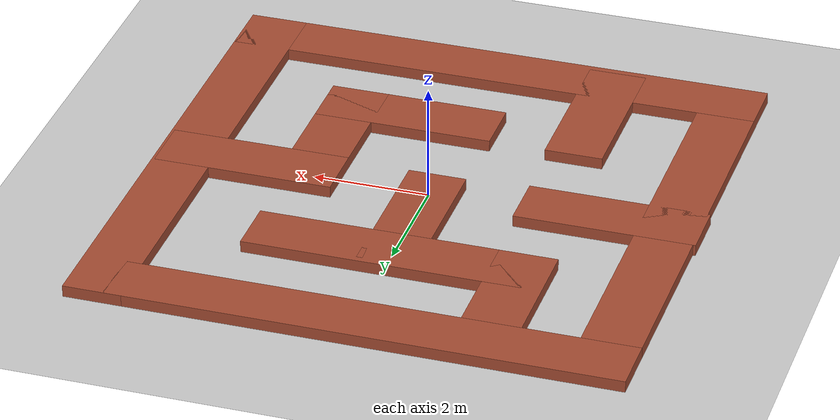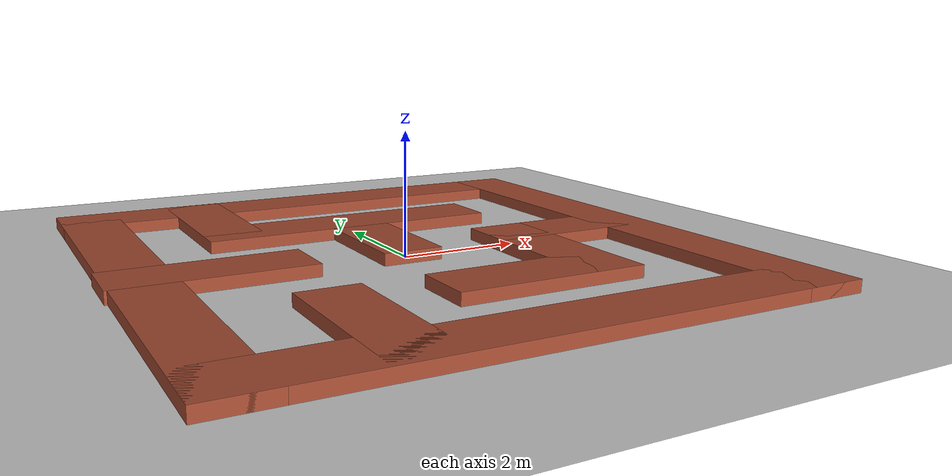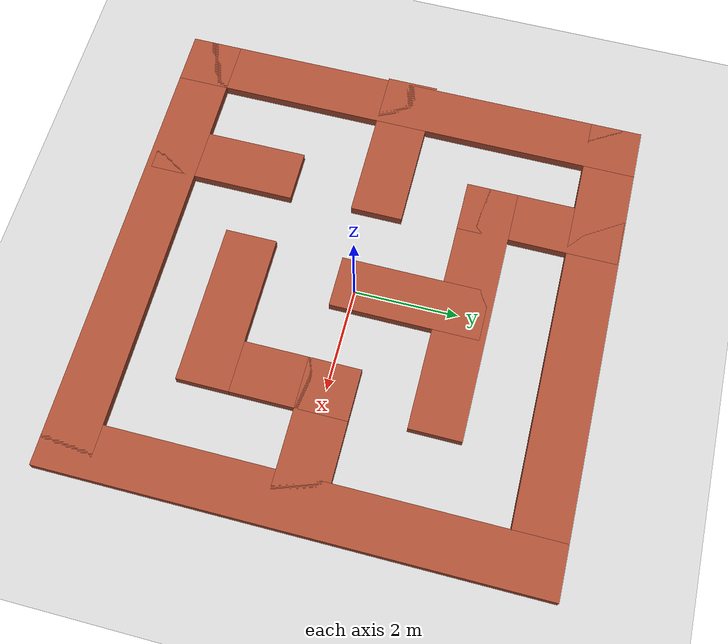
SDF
<sdf version="1.7">
 <world name="default">
  <light name="sun" type="directional">
   <pose>0 0 10 0 -0 0</pose>
   <diffuse>0.8 0.8 0.8 1</diffuse>
   <specular>0.2 0.2 0.2 1</specular>
   <attenuation>
    <range>1000</range>
    <constant>0.9</constant>
    <linear>0.01</linear>
    <quadratic>0.001</quadratic>
   </attenuation>
   <direction>-0.5 0.1 -0.9</direction>
   <spot><inner_angle>0</inner_angle><outer_angle>0</outer_angle><falloff>0</falloff></spot>
  </light>
  <model name="ground_plane">
   <static>1</static>
   <link name="link">
    <collision name="collision">
     <geometry><plane><normal>0 0 1</normal><size>100 100</size></plane></geometry>
     <surface><friction><ode><mu>100</mu><mu2>50</mu2></ode></friction></surface>
    </collision>
    <visual name="visual">
     <cast_shadows>0</cast_shadows>
     <geometry><plane><normal>0 0 1</normal><size>100 100</size></plane></geometry>
     <material>
      <script><uri>file://media/materials/scripts/gazebo.material</uri><name>Gazebo/Grey</name></script>
     </material>
    </visual>
   </link>
  </model>
  <gravity>0 0 -9.8</gravity>
  <magnetic_field>6e-06 2.3e-05 -4.2e-05</magnetic_field>
  <atmosphere type="adiabatic"/>
  <physics type="ode">
   <max_step_size>0.001</max_step_size>
   <real_time_factor>1</real_time_factor>
   <real_time_update_rate>1000</real_time_update_rate>
  </physics>
  <scene><ambient>0.4 0.4 0.4 1</ambient><background>0.7 0.7 0.7 1</background><shadows>1</shadows></scene>
  <audio><device>default</device></audio>
  <spherical_coordinates>
   <surface_model>EARTH_WGS84</surface_model>
   <latitude_deg>0</latitude_deg>
   <longitude_deg>0</longitude_deg>
   <elevation>0</elevation>
   <heading_deg>0</heading_deg>
  </spherical_coordinates>
  <model name="little_maze">
   <pose>-0.015424 0.038 0 0 -0 0</pose>
   <link name="Wall_0">
    <collision name="Wall_0_Collision">
     <geometry><box><size>9.35 1 0.2</size></box></geometry>
     <pose>0 0 0.1 0 -0 0</pose>
    </collision>
    <visual name="Wall_0_Visual">
     <pose>0 0 0.1 0 -0 0</pose>
     <geometry><box><size>9.35 1 0.2</size></box></geometry>
     <material>
      <script><uri>file://media/materials/scripts/gazebo.material</uri><name>Gazebo/Bricks</name></script>
      <ambient>1 1 1 1</ambient>
     </material>
     <meta><layer>0</layer></meta>
    </visual>
    <pose>0.022424 -4.175 0 0 -0 0</pose>
   </link>
   <link name="Wall_10">
    <collision name="Wall_10_Collision">
     <geometry><box><size>3.0997 1 0.2</size></box></geometry>
     <pose>0 0 0.1 0 -0 0</pose>
    </collision>
    <visual name="Wall_10_Visual">
     <pose>0 0 0.1 0 -0 0</pose>
     <geometry><box><size>3.0997 1 0.2</size></box></geometry>
     <material>
      <script><uri>file://media/materials/scripts/gazebo.material</uri><name>Gazebo/Bricks</name></script>
      <ambient>1 1 1 1</ambient>
     </material>
     <meta><layer>0</layer></meta>
    </visual>
    <pose>-3.14758 -0.02 0 0 -0 0</pose>
   </link>
   <link name="Wall_12">
    <collision name="Wall_12_Collision">
     <geometry><box><size>3.09984 1 0.2</size></box></geometry>
     <pose>0 0 0.1 0 -0 0</pose>
    </collision>
    <visual name="Wall_12_Visual">
     <pose>0 0 0.1 0 -0 0</pose>
     <geometry><box><size>3.09984 1 0.2</size></box></geometry>
     <material>
      <script><uri>file://media/materials/scripts/gazebo.material</uri><name>Gazebo/Bricks</name></script>
      <ambient>1 1 1 1</ambient>
     </material>
     <meta><layer>0</layer></meta>
    </visual>
    <pose>3.10442 0.007 0 0 -0 3.14159</pose>
   </link>
   <link name="Wall_14">
    <collision name="Wall_14_Collision">
     <geometry><box><size>3.22 1 0.2</size></box></geometry>
     <pose>0 0 0.1 0 -0 0</pose>
    </collision>
    <visual name="Wall_14_Visual">
     <pose>0 0 0.1 0 -0 0</pose>
     <geometry><box><size>3.22 1 0.2</size></box></geometry>
     <material>
      <script><uri>file://media/materials/scripts/gazebo.material</uri><name>Gazebo/Bricks</name></script>
      <ambient>1 1 1 1</ambient>
     </material>
     <meta><layer>0</layer></meta>
    </visual>
    <pose>2.05442 -1.103 0 0 -0 -1.5708</pose>
   </link>
   <link name="Wall_16">
    <collision name="Wall_16_Collision">
     <geometry><box><size>3.1 1 0.2</size></box></geometry>
     <pose>0 0 0.1 0 -0 0</pose>
    </collision>
    <visual name="Wall_16_Visual">
     <pose>0 0 0.1 0 -0 0</pose>
     <geometry><box><size>3.1 1 0.2</size></box></geometry>
     <material>
      <script><uri>file://media/materials/scripts/gazebo.material</uri><name>Gazebo/Bricks</name></script>
      <ambient>1 1 1 1</ambient>
     </material>
     <meta><layer>0</layer></meta>
    </visual>
    <pose>1.00442 -2.213 0 0 -0 3.14159</pose>
   </link>
   <link name="Wall_18">
    <collision name="Wall_18_Collision">
     <geometry><box><size>3.1 1 0.2</size></box></geometry>
     <pose>0 0 0.1 0 -0 0</pose>
    </collision>
    <visual name="Wall_18_Visual">
     <pose>0 0 0.1 0 -0 0</pose>
     <geometry><box><size>3.1 1 0.2</size></box></geometry>
     <material>
      <script><uri>file://media/materials/scripts/gazebo.material</uri><name>Gazebo/Bricks</name></script>
      <ambient>1 1 1 1</ambient>
     </material>
     <meta><layer>0</layer></meta>
    </visual>
    <pose>-2.18458 3.10304 0 0 -0 -1.5708</pose>
   </link>
   <link name="Wall_2">
    <collision name="Wall_2_Collision">
     <geometry><box><size>9.35 1 0.2</size></box></geometry>
     <pose>0 0 0.1 0 -0 0</pose>
    </collision>
    <visual name="Wall_2_Visual">
     <pose>0 0 0.1 0 -0 0</pose>
     <geometry><box><size>9.35 1 0.2</size></box></geometry>
     <material>
      <script><uri>file://media/materials/scripts/gazebo.material</uri><name>Gazebo/Bricks</name></script>
      <ambient>1 1 1 1</ambient>
     </material>
     <meta><layer>0</layer></meta>
    </visual>
    <pose>4.19742 -0 0 0 -0 1.5708</pose>
   </link>
   <link name="Wall_20">
    <collision name="Wall_20_Collision">
     <geometry><box><size>5.1 1 0.2</size></box></geometry>
     <pose>0 0 0.1 0 -0 0</pose>
    </collision>
    <visual name="Wall_20_Visual">
     <pose>0 0 0.1 0 -0 0</pose>
     <geometry><box><size>5.1 1 0.2</size></box></geometry>
     <material>
      <script><uri>file://media/materials/scripts/gazebo.material</uri><name>Gazebo/Bricks</name></script>
      <ambient>1 1 1 1</ambient>
     </material>
     <meta><layer>0</layer></meta>
    </visual>
    <pose>-0.134576 2.053 0 0 -0 0</pose>
   </link>
   <link name="Wall_22">
    <collision name="Wall_22_Collision">
     <geometry><box><size>2.85008 1 0.2</size></box></geometry>
     <pose>0 0 0.1 0 -0 0</pose>
    </collision>
    <visual name="Wall_22_Visual">
     <pose>0 0 0.1 0 -0 0</pose>
     <geometry><box><size>2.85008 1 0.2</size></box></geometry>
     <material>
      <script><uri>file://media/materials/scripts/gazebo.material</uri><name>Gazebo/Bricks</name></script>
      <ambient>1 1 1 1</ambient>
     </material>
     <meta><layer>0</layer></meta>
    </visual>
    <pose>-0.032576 1.016 0 0 -0 -1.5708</pose>
   </link>
   <link name="Wall_4">
    <collision name="Wall_4_Collision">
     <geometry><box><size>9.35 1 0.2</size></box></geometry>
     <pose>0 0 0.1 0 -0 0</pose>
    </collision>
    <visual name="Wall_4_Visual">
     <pose>0 0 0.1 0 -0 0</pose>
     <geometry><box><size>9.35 1 0.2</size></box></geometry>
     <material>
      <script><uri>file://media/materials/scripts/gazebo.material</uri><name>Gazebo/Bricks</name></script>
      <ambient>1 1 1 1</ambient>
     </material>
     <meta><layer>0</layer></meta>
    </visual>
    <pose>0.022424 4.175 0 0 -0 3.14159</pose>
   </link>
   <link name="Wall_6">
    <collision name="Wall_6_Collision">
     <geometry><box><size>9.35 1 0.2</size></box></geometry>
     <pose>0 0 0.1 0 -0 0</pose>
    </collision>
    <visual name="Wall_6_Visual">
     <pose>0 0 0.1 0 -0 0</pose>
     <geometry><box><size>9.35 1 0.2</size></box></geometry>
     <material>
      <script><uri>file://media/materials/scripts/gazebo.material</uri><name>Gazebo/Bricks</name></script>
      <ambient>1 1 1 1</ambient>
     </material>
     <meta><layer>0</layer></meta>
    </visual>
    <pose>-4.15258 -0 0 0 -0 -1.5708</pose>
   </link>
   <link name="Wall_8">
    <collision name="Wall_8_Collision">
     <geometry><box><size>2.8502 1 0.2</size></box></geometry>
     <pose>0 0 0.1 0 -0 0</pose>
    </collision>
    <visual name="Wall_8_Visual">
     <pose>0 0 0.1 0 -0 0</pose>
     <geometry><box><size>2.8502 1 0.2</size></box></geometry>
     <material>
      <script><uri>file://media/materials/scripts/gazebo.material</uri><name>Gazebo/Bricks</name></script>
      <ambient>1 1 1 1</ambient>
     </material>
     <meta><layer>0</layer></meta>
    </visual>
    <pose>-2.01658 -3.138 0 0 -0 1.5708</pose>
   </link>
   <static>1</static>
  </model>
 </world>
</sdf>
